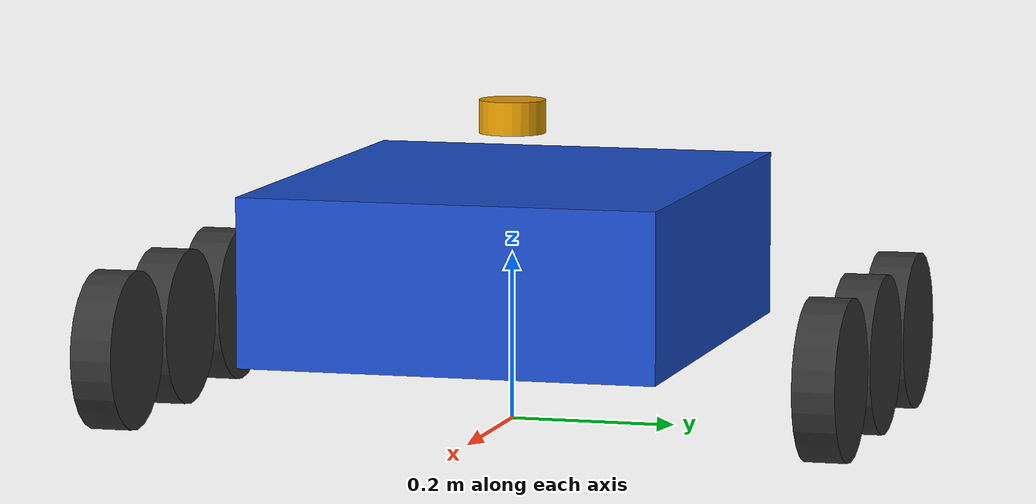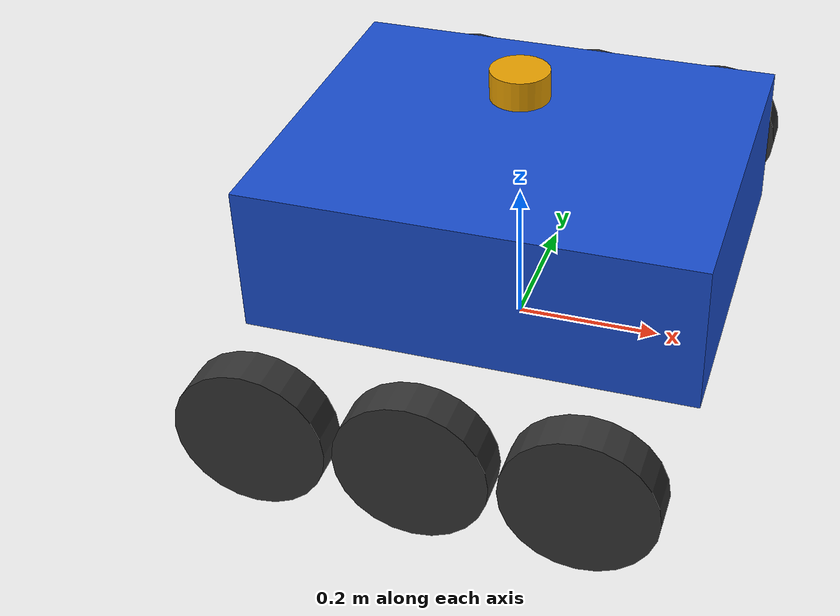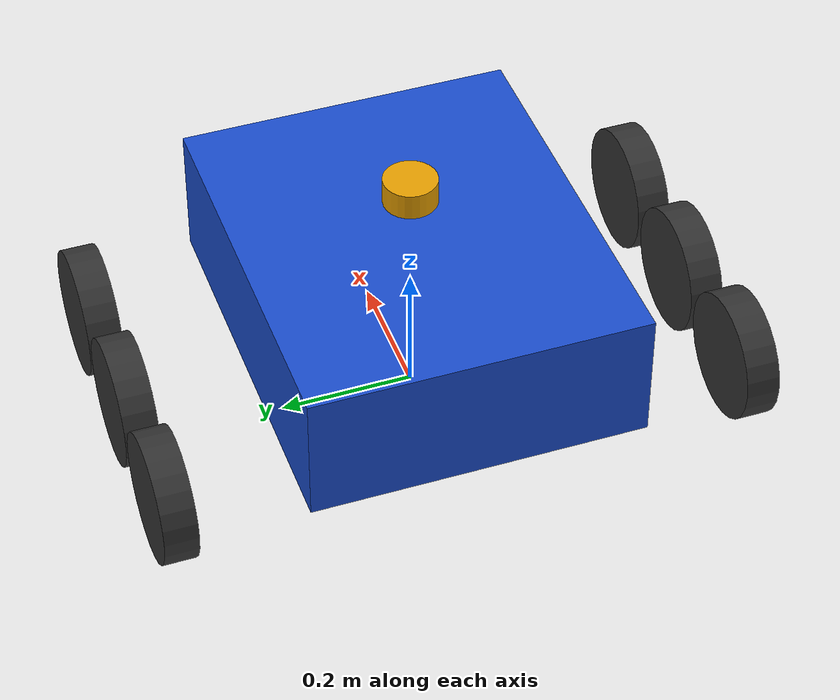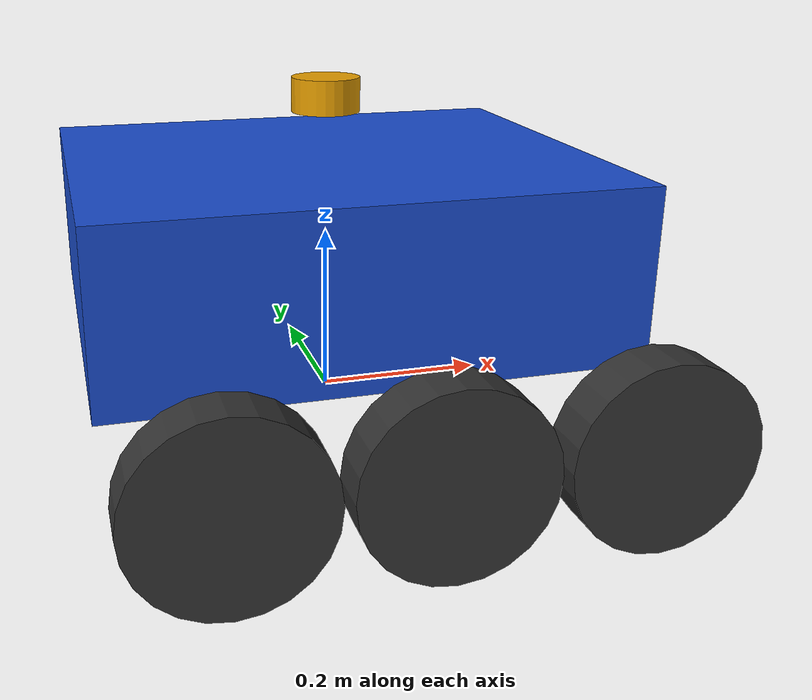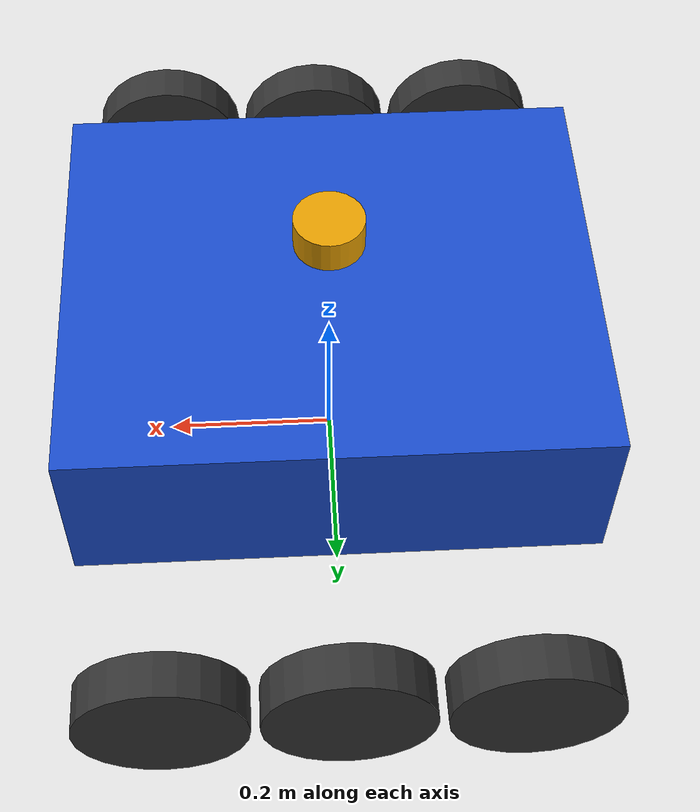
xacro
<?xml version="1.0"?>
<robot xmlns:xacro="http://www.ros.org/wiki/xacro" name="storm">

  <xacro:arg name="hardware" default="mock"/>
  <xacro:arg name="can_interface" default="can0"/>
  <xacro:arg name="lidar" default="true"/>
  <!-- All units: meters, kg, radians -->

  <!-- Chassis: simple box -->
  <xacro:property name="chassis_length" value="0.60"/>
  <xacro:property name="chassis_width"  value="0.50"/>
  <xacro:property name="chassis_height" value="0.20"/>
  <xacro:property name="chassis_mass"   value="25.0"/>

  <!-- Wheels -->
  <xacro:property name="wheel_radius"     value="0.09525"/>   <!-- 3.75 in -->
  <xacro:property name="wheel_width"      value="0.05"/>
  <xacro:property name="wheel_mass"       value="0.5"/>
  <xacro:property name="wheel_separation" value="0.8636"/>    <!-- 34 in center to center -->

  <!-- Wheel Y offset from base_link center (half track width) -->
  <xacro:property name="wheel_y_offset" value="${wheel_separation / 2.0}"/>

  <!-- Wheel X positions (front/middle/back), measured from base_link center -->
  <xacro:property name="wheel_x_front"  value="0.20"/>
  <xacro:property name="wheel_x_middle" value="0.00"/>
  <xacro:property name="wheel_x_back"   value="-0.20"/>

  <!-- Chassis sits so wheel axles are at ground level (z=0 at ground) -->
  <xacro:property name="chassis_z_offset" value="${wheel_radius + chassis_height / 2.0}"/>

  <!-- INERTIA MACROS -->

  <xacro:macro name="box_inertia" params="m x y z">
    <inertial>
      <origin xyz="0 0 ${z/2}"/>
      <mass value="${m}"/>
      <inertia ixx="${m*(y*y+z*z)/12}" ixy="0" ixz="0"
               iyy="${m*(x*x+z*z)/12}" iyz="0"
               izz="${m*(x*x+y*y)/12}"/>
    </inertial>
  </xacro:macro>

  <xacro:macro name="cylinder_inertia" params="m r l">
    <inertial>
      <mass value="${m}"/>
      <inertia ixx="${m*(3*r*r+l*l)/12}" ixy="0" ixz="0"
               iyy="${m*(3*r*r+l*l)/12}" iyz="0"
               izz="${m*r*r/2}"/>
    </inertial>
  </xacro:macro>

  <!-- WHEEL MACRO -->

  <xacro:macro name="wheel" params="name x_pos y_pos">
    <link name="${name}_link">
      <visual>
        <geometry>
          <cylinder radius="${wheel_radius}" length="${wheel_width}"/>
        </geometry>
        <material name="dark_grey">
          <color rgba="0.2 0.2 0.2 1.0"/>
        </material>
      </visual>
      <collision>
        <geometry>
          <cylinder radius="${wheel_radius}" length="${wheel_width}"/>
        </geometry>
      </collision>
      <xacro:cylinder_inertia m="${wheel_mass}" r="${wheel_radius}" l="${wheel_width}"/>
    </link>

    <joint name="${name}_joint" type="continuous">
      <parent link="base_link"/>
      <child link="${name}_link"/>
      <!-- Wheel cylinder axis is Z in its own frame; we rotate so it aligns
           with the Y axis of base_link (the axle direction). -->
      <origin xyz="${x_pos} ${y_pos} 0.0" rpy="${-pi/2} 0 0"/>
      <axis xyz="0 0 1"/>
    </joint>
  </xacro:macro>

  <!--  LINKS & JOINTS  -->

  <!-- base_link: at wheel-axle height, center of chassis footprint -->
  <link name="base_link">
    <visual>
      <origin xyz="0 0 ${chassis_height / 2.0}" rpy="0 0 0"/>
      <geometry>
        <box size="${chassis_length} ${chassis_width} ${chassis_height}"/>
      </geometry>
      <material name="blue">
        <color rgba="0.1 0.3 0.8 1.0"/>
      </material>
    </visual>
    <collision>
      <origin xyz="0 0 ${chassis_height / 2.0}" rpy="0 0 0"/>
      <geometry>
        <box size="${chassis_length} ${chassis_width} ${chassis_height}"/>
      </geometry>
    </collision>
    <xacro:box_inertia m="${chassis_mass}"
                       x="${chassis_length}"
                       y="${chassis_width}"
                       z="${chassis_height}"/>
  </link>

  <!-- base_footprint: on the ground directly below base_link (for nav) -->
  <link name="base_footprint"/>
  <joint name="base_footprint_joint" type="fixed">
    <parent link="base_footprint"/>
    <child link="base_link"/>
    <origin xyz="0 0 ${wheel_radius}" rpy="0 0 0"/>
  </joint>

  <!-- 6 wheels -->
  <xacro:wheel name="front_right_wheel"  x_pos="${wheel_x_front}"  y_pos="${-wheel_y_offset}"/>
  <xacro:wheel name="middle_right_wheel" x_pos="${wheel_x_middle}" y_pos="${-wheel_y_offset}"/>
  <xacro:wheel name="back_right_wheel"   x_pos="${wheel_x_back}"   y_pos="${-wheel_y_offset}"/>

  <!-- Left side -->
  <xacro:wheel name="front_left_wheel"   x_pos="${wheel_x_front}"  y_pos="${wheel_y_offset}"/>
  <xacro:wheel name="middle_left_wheel"  x_pos="${wheel_x_middle}" y_pos="${wheel_y_offset}"/>
  <xacro:wheel name="back_left_wheel"    x_pos="${wheel_x_back}"   y_pos="${wheel_y_offset}"/>

  <xacro:include filename="$(find storm_description)/urdf/storm.ros2_control.xacro"/>
  <xacro:storm_control backend="$(arg hardware)" can_interface="$(arg can_interface)"/>
  <xacro:if value="$(arg lidar)">
    <link name="lidar_link">
      <visual><geometry><cylinder radius="0.04" length="0.04"/></geometry></visual>
      <inertial><mass value="0.1"/><inertia ixx="0.0001" ixy="0" ixz="0" iyy="0.0001" iyz="0" izz="0.0001"/></inertial>
    </link>
    <joint name="lidar_joint" type="fixed"><parent link="base_link"/><child link="lidar_link"/><origin xyz="0 0 0.27"/></joint>
  </xacro:if>
</robot>
